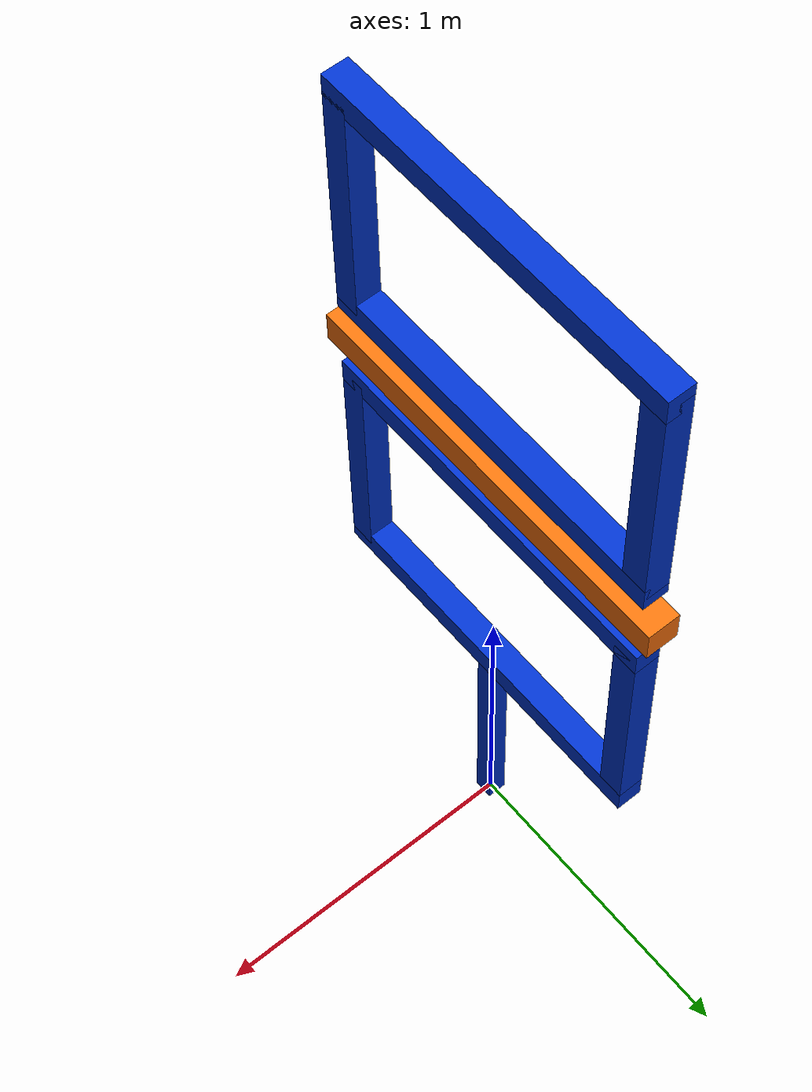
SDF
<?xml version="1.0" encoding="UTF-8"?>
<sdf version="1.9">
  <model name="robocup_obs4_flip_gate">
    <static>true</static>
    <link name="lower_left_bar"><pose>0 -0.54 1.25 0 0 0</pose><visual name="visual"><geometry><box><size>0.08 0.08 0.78</size></box></geometry><material><diffuse>0.0 0.20 0.80 1</diffuse></material></visual></link>
    <link name="lower_right_bar"><pose>0 0.54 1.25 0 0 0</pose><visual name="visual"><geometry><box><size>0.08 0.08 0.78</size></box></geometry><material><diffuse>0.0 0.20 0.80 1</diffuse></material></visual></link>
    <link name="lower_top_bar"><pose>0 0 1.64 0 0 0</pose><visual name="visual"><geometry><box><size>0.08 1.16 0.08</size></box></geometry><material><diffuse>0.0 0.20 0.80 1</diffuse></material></visual></link>
    <link name="lower_bottom_bar"><pose>0 0 0.86 0 0 0</pose><visual name="visual"><geometry><box><size>0.08 1.16 0.08</size></box></geometry><material><diffuse>0.0 0.20 0.80 1</diffuse></material></visual></link>

    <link name="upper_left_bar"><pose>0 -0.54 2.35 0 0 0</pose><visual name="visual"><geometry><box><size>0.08 0.08 0.78</size></box></geometry><material><diffuse>0.0 0.20 0.80 1</diffuse></material></visual></link>
    <link name="upper_right_bar"><pose>0 0.54 2.35 0 0 0</pose><visual name="visual"><geometry><box><size>0.08 0.08 0.78</size></box></geometry><material><diffuse>0.0 0.20 0.80 1</diffuse></material></visual></link>
    <link name="upper_top_bar"><pose>0 0 2.74 0 0 0</pose><visual name="visual"><geometry><box><size>0.08 1.16 0.08</size></box></geometry><material><diffuse>0.0 0.20 0.80 1</diffuse></material></visual></link>
    <link name="upper_bottom_bar"><pose>0 0 1.96 0 0 0</pose><visual name="visual"><geometry><box><size>0.08 1.16 0.08</size></box></geometry><material><diffuse>0.0 0.20 0.80 1</diffuse></material></visual></link>

    <link name="middle_crossbar"><pose>0 0 1.80 0 0 0</pose><visual name="visual"><geometry><box><size>0.10 1.24 0.10</size></box></geometry><material><diffuse>1.0 0.45 0.05 1</diffuse></material></visual></link>
    <link name="support"><pose>0 0 0.43 0 0 0</pose><visual name="visual"><geometry><box><size>0.06 0.06 0.86</size></box></geometry><material><diffuse>0.0 0.20 0.80 1</diffuse></material></visual></link>
  </model>
</sdf>
